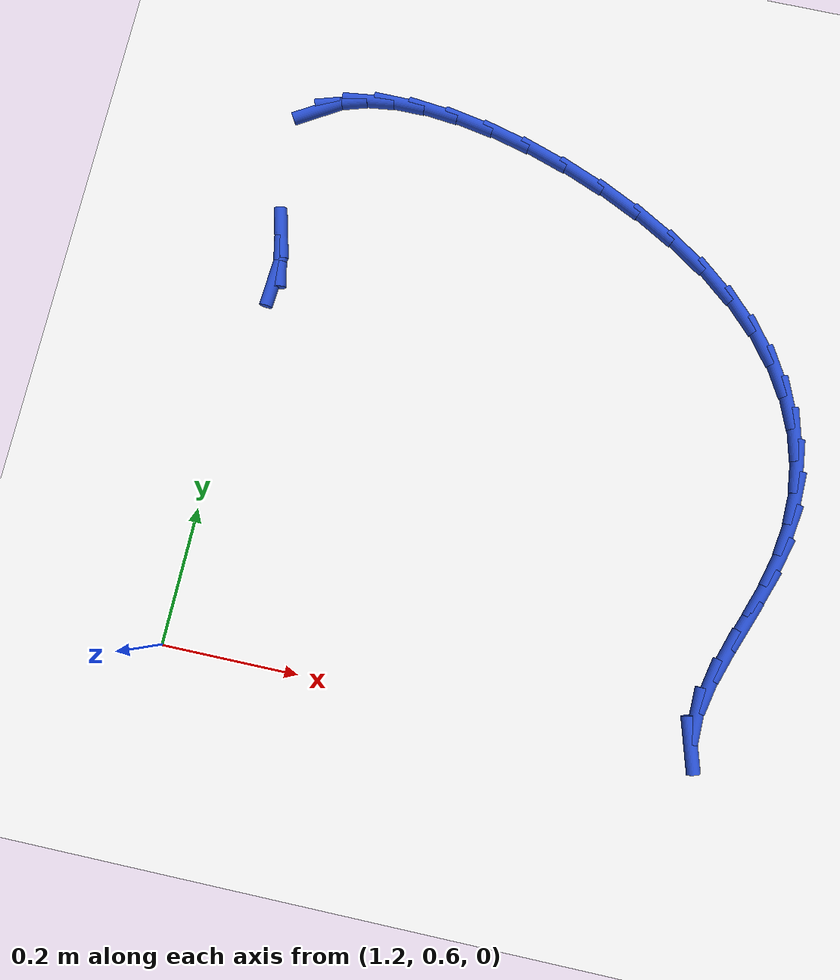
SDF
<sdf version="1.6">
 <world name="default">
  <model name="ground_plane">
   <static>1</static>
   <link name="link">
    <collision name="collision">
     <geometry><plane><normal>0 0 1</normal><size>100 100</size></plane></geometry>
     <surface><friction><ode><mu>100</mu><mu2>50</mu2></ode></friction></surface>
    </collision>
    <visual name="visual">
     <cast_shadows>0</cast_shadows>
     <geometry><plane><normal>0 0 1</normal><size>100 100</size></plane></geometry>
     <material>
      <script><uri>file://media/materials/scripts/gazebo.material</uri><name>Gazebo/WhiteGlow</name></script>
     </material>
    </visual>
   </link>
  </model>
  <model name="line">
   <link name="link_44">
    <pose>1.2268882900225841 1.1556203905439701 0.01 0 1.57 1.509342696568505</pose>
    <collision name="collision">
     <geometry><cylinder><radius>0.01</radius><length>0.08</length></cylinder></geometry>
    </collision>
    <visual name="visual">
     <material>
      <script><name>Gazebo/Blue</name><uri>file://media/materials/scripts/gazebo.material</uri></script>
     </material>
     <geometry><cylinder><radius>0.01</radius><length>0.08</length></cylinder></geometry>
    </visual>
   </link>
   <link name="link_45">
    <pose>1.2288407437148205 1.1873515546843953 0.01 0 1.57 -1.3631857798975189</pose>
    <collision name="collision">
     <geometry><cylinder><radius>0.01</radius><length>0.08</length></cylinder></geometry>
    </collision>
    <visual name="visual">
     <material>
      <script><name>Gazebo/Blue</name><uri>file://media/materials/scripts/gazebo.material</uri></script>
     </material>
     <geometry><cylinder><radius>0.01</radius><length>0.08</length></cylinder></geometry>
    </visual>
   </link>
   <link name="link_46">
    <pose>1.2197252214525915 1.2306257444936068 0.01 0 1.57 -1.302869429223979</pose>
    <collision name="collision">
     <geometry><cylinder><radius>0.01</radius><length>0.08</length></cylinder></geometry>
    </collision>
    <visual name="visual">
     <material>
      <script><name>Gazebo/Blue</name><uri>file://media/materials/scripts/gazebo.material</uri></script>
     </material>
     <geometry><cylinder><radius>0.01</radius><length>0.08</length></cylinder></geometry>
    </visual>
   </link>
   <link name="link_51">
    <pose>1.227743006416404 1.4355734864724743 0.01 0 1.57 0.5484690647117576</pose>
    <collision name="collision">
     <geometry><cylinder><radius>0.01</radius><length>0.08</length></cylinder></geometry>
    </collision>
    <visual name="visual">
     <material>
      <script><name>Gazebo/Blue</name><uri>file://media/materials/scripts/gazebo.material</uri></script>
     </material>
     <geometry><cylinder><radius>0.01</radius><length>0.08</length></cylinder></geometry>
    </visual>
   </link>
   <link name="link_52">
    <pose>1.2599540089391188 1.4552544340132947 0.01 0 1.57 0.2984901426879694</pose>
    <collision name="collision">
     <geometry><cylinder><radius>0.01</radius><length>0.08</length></cylinder></geometry>
    </collision>
    <visual name="visual">
     <material>
      <script><name>Gazebo/Blue</name><uri>file://media/materials/scripts/gazebo.material</uri></script>
     </material>
     <geometry><cylinder><radius>0.01</radius><length>0.08</length></cylinder></geometry>
    </visual>
   </link>
   <link name="link_53">
    <pose>1.3006427144156738 1.4677736442340934 0.01 0 1.57 0.12061527283436092</pose>
    <collision name="collision">
     <geometry><cylinder><radius>0.01</radius><length>0.08</length></cylinder></geometry>
    </collision>
    <visual name="visual">
     <material>
      <script><name>Gazebo/Blue</name><uri>file://media/materials/scripts/gazebo.material</uri></script>
     </material>
     <geometry><cylinder><radius>0.01</radius><length>0.08</length></cylinder></geometry>
    </visual>
   </link>
   <link name="link_54">
    <pose>1.3484546050103041 1.4735686175984053 0.01 0 1.57 -0.00917775478246893</pose>
    <collision name="collision">
     <geometry><cylinder><radius>0.01</radius><length>0.08</length></cylinder></geometry>
    </collision>
    <visual name="visual">
     <material>
      <script><name>Gazebo/Blue</name><uri>file://media/materials/scripts/gazebo.material</uri></script>
     </material>
     <geometry><cylinder><radius>0.01</radius><length>0.08</length></cylinder></geometry>
    </visual>
   </link>
   <link name="link_55">
    <pose>1.4020351628872454 1.4730768545697648 0.01 0 1.57 -0.10890494523205782</pose>
    <collision name="collision">
     <geometry><cylinder><radius>0.01</radius><length>0.08</length></cylinder></geometry>
    </collision>
    <visual name="visual">
     <material>
      <script><name>Gazebo/Blue</name><uri>file://media/materials/scripts/gazebo.material</uri></script>
     </material>
     <geometry><cylinder><radius>0.01</radius><length>0.08</length></cylinder></geometry>
    </visual>
   </link>
   <link name="link_56">
    <pose>1.4600298702107315 1.4667358556117058 0.01 0 1.57 -0.19017016413349755</pose>
    <collision name="collision">
     <geometry><cylinder><radius>0.01</radius><length>0.08</length></cylinder></geometry>
    </collision>
    <visual name="visual">
     <material>
      <script><name>Gazebo/Blue</name><uri>file://media/materials/scripts/gazebo.material</uri></script>
     </material>
     <geometry><cylinder><radius>0.01</radius><length>0.08</length></cylinder></geometry>
    </visual>
   </link>
   <link name="link_57">
    <pose>1.5210842091449983 1.4549831211877642 0.01 0 1.57 -0.2604702192928912</pose>
    <collision name="collision">
     <geometry><cylinder><radius>0.01</radius><length>0.08</length></cylinder></geometry>
    </collision>
    <visual name="visual">
     <material>
      <script><name>Gazebo/Blue</name><uri>file://media/materials/scripts/gazebo.material</uri></script>
     </material>
     <geometry><cylinder><radius>0.01</radius><length>0.08</length></cylinder></geometry>
    </visual>
   </link>
   <link name="link_58">
    <pose>1.583843661854281 1.438256151761473 0.01 0 1.57 -0.32498455611469085</pose>
    <collision name="collision">
     <geometry><cylinder><radius>0.01</radius><length>0.08</length></cylinder></geometry>
    </collision>
    <visual name="visual">
     <material>
      <script><name>Gazebo/Blue</name><uri>file://media/materials/scripts/gazebo.material</uri></script>
     </material>
     <geometry><cylinder><radius>0.01</radius><length>0.08</length></cylinder></geometry>
    </visual>
   </link>
   <link name="link_59">
    <pose>1.6469537105028131 1.4169924477963676 0.01 0 1.57 -0.3877100997034499</pose>
    <collision name="collision">
     <geometry><cylinder><radius>0.01</radius><length>0.08</length></cylinder></geometry>
    </collision>
    <visual name="visual">
     <material>
      <script><name>Gazebo/Blue</name><uri>file://media/materials/scripts/gazebo.material</uri></script>
     </material>
     <geometry><cylinder><radius>0.01</radius><length>0.08</length></cylinder></geometry>
    </visual>
   </link>
   <link name="link_60">
    <pose>1.7090598372548311 1.3916295097559819 0.01 0 1.57 -0.45221299297175904</pose>
    <collision name="collision">
     <geometry><cylinder><radius>0.01</radius><length>0.08</length></cylinder></geometry>
    </collision>
    <visual name="visual">
     <material>
      <script><name>Gazebo/Blue</name><uri>file://media/materials/scripts/gazebo.material</uri></script>
     </material>
     <geometry><cylinder><radius>0.01</radius><length>0.08</length></cylinder></geometry>
    </visual>
   </link>
   <link name="link_61">
    <pose>1.7688075242745689 1.3626048381038514 0.01 0 1.57 -0.5222222685306123</pose>
    <collision name="collision">
     <geometry><cylinder><radius>0.01</radius><length>0.08</length></cylinder></geometry>
    </collision>
    <visual name="visual">
     <material>
      <script><name>Gazebo/Blue</name><uri>file://media/materials/scripts/gazebo.material</uri></script>
     </material>
     <geometry><cylinder><radius>0.01</radius><length>0.08</length></cylinder></geometry>
    </visual>
   </link>
   <link name="link_62">
    <pose>1.8248422537262612 1.3303559333035095 0.01 0 1.57 -0.602229392419917</pose>
    <collision name="collision">
     <geometry><cylinder><radius>0.01</radius><length>0.08</length></cylinder></geometry>
    </collision>
    <visual name="visual">
     <material>
      <script><name>Gazebo/Blue</name><uri>file://media/materials/scripts/gazebo.material</uri></script>
     </material>
     <geometry><cylinder><radius>0.01</radius><length>0.08</length></cylinder></geometry>
    </visual>
   </link>
   <link name="link_63">
    <pose>1.8758095077741448 1.2953202958184913 0.01 0 1.57 -0.6974812354569768</pose>
    <collision name="collision">
     <geometry><cylinder><radius>0.01</radius><length>0.08</length></cylinder></geometry>
    </collision>
    <visual name="visual">
     <material>
      <script><name>Gazebo/Blue</name><uri>file://media/materials/scripts/gazebo.material</uri></script>
     </material>
     <geometry><cylinder><radius>0.01</radius><length>0.08</length></cylinder></geometry>
    </visual>
   </link>
   <link name="link_64">
    <pose>1.9204390569906598 1.2579211001896966 0.01 0 1.57 -0.806347410863595</pose>
    <collision name="collision">
     <geometry><cylinder><radius>0.01</radius><length>0.08</length></cylinder></geometry>
    </collision>
    <visual name="visual">
     <material>
      <script><name>Gazebo/Blue</name><uri>file://media/materials/scripts/gazebo.material</uri></script>
     </material>
     <geometry><cylinder><radius>0.01</radius><length>0.08</length></cylinder></geometry>
    </visual>
   </link>
   <link name="link_65">
    <pose>1.9583009041307067 1.2184387124568747 0.01 0 1.57 -0.9254235962651746</pose>
    <collision name="collision">
     <geometry><cylinder><radius>0.01</radius><length>0.08</length></cylinder></geometry>
    </collision>
    <visual name="visual">
     <material>
      <script><name>Gazebo/Blue</name><uri>file://media/materials/scripts/gazebo.material</uri></script>
     </material>
     <geometry><cylinder><radius>0.01</radius><length>0.08</length></cylinder></geometry>
    </visual>
   </link>
   <link name="link_66">
    <pose>1.9894474519612113 1.177071508438366 0.01 0 1.57 -1.0536353584999212</pose>
    <collision name="collision">
     <geometry><cylinder><radius>0.01</radius><length>0.08</length></cylinder></geometry>
    </collision>
    <visual name="visual">
     <material>
      <script><name>Gazebo/Blue</name><uri>file://media/materials/scripts/gazebo.material</uri></script>
     </material>
     <geometry><cylinder><radius>0.01</radius><length>0.08</length></cylinder></geometry>
    </visual>
   </link>
   <link name="link_67">
    <pose>2.0139368420238357 1.1340168885723312 0.01 0 1.57 -1.1888872692599786</pose>
    <collision name="collision">
     <geometry><cylinder><radius>0.01</radius><length>0.08</length></cylinder></geometry>
    </collision>
    <visual name="visual">
     <material>
      <script><name>Gazebo/Blue</name><uri>file://media/materials/scripts/gazebo.material</uri></script>
     </material>
     <geometry><cylinder><radius>0.01</radius><length>0.08</length></cylinder></geometry>
    </visual>
   </link>
   <link name="link_68">
    <pose>2.031827215860241 1.0894722532969296 0.01 0 1.57 -1.3280737308367965</pose>
    <collision name="collision">
     <geometry><cylinder><radius>0.01</radius><length>0.08</length></cylinder></geometry>
    </collision>
    <visual name="visual">
     <material>
      <script><name>Gazebo/Blue</name><uri>file://media/materials/scripts/gazebo.material</uri></script>
     </material>
     <geometry><cylinder><radius>0.01</radius><length>0.08</length></cylinder></geometry>
    </visual>
   </link>
   <link name="link_69">
    <pose>2.04317671501209 1.0436350030503212 0.01 0 1.57 -1.4674684187488845</pose>
    <collision name="collision">
     <geometry><cylinder><radius>0.01</radius><length>0.08</length></cylinder></geometry>
    </collision>
    <visual name="visual">
     <material>
      <script><name>Gazebo/Blue</name><uri>file://media/materials/scripts/gazebo.material</uri></script>
     </material>
     <geometry><cylinder><radius>0.01</radius><length>0.08</length></cylinder></geometry>
    </visual>
   </link>
   <link name="link_70">
    <pose>2.0480434810210433 0.9967025382706665 0.01 0 1.57 1.5382379739220828</pose>
    <collision name="collision">
     <geometry><cylinder><radius>0.01</radius><length>0.08</length></cylinder></geometry>
    </collision>
    <visual name="visual">
     <material>
      <script><name>Gazebo/Blue</name><uri>file://media/materials/scripts/gazebo.material</uri></script>
     </material>
     <geometry><cylinder><radius>0.01</radius><length>0.08</length></cylinder></geometry>
    </visual>
   </link>
   <link name="link_71">
    <pose>2.046485655428763 0.9488722593961243 0.01 0 1.57 1.4089408867401596</pose>
    <collision name="collision">
     <geometry><cylinder><radius>0.01</radius><length>0.08</length></cylinder></geometry>
    </collision>
    <visual name="visual">
     <material>
      <script><name>Gazebo/Blue</name><uri>file://media/materials/scripts/gazebo.material</uri></script>
     </material>
     <geometry><cylinder><radius>0.01</radius><length>0.08</length></cylinder></geometry>
    </visual>
   </link>
   <link name="link_72">
    <pose>2.03856137977691 0.9003415668648556 0.01 0 1.57 1.2935672476214564</pose>
    <collision name="collision">
     <geometry><cylinder><radius>0.01</radius><length>0.08</length></cylinder></geometry>
    </collision>
    <visual name="visual">
     <material>
      <script><name>Gazebo/Blue</name><uri>file://media/materials/scripts/gazebo.material</uri></script>
     </material>
     <geometry><cylinder><radius>0.01</radius><length>0.08</length></cylinder></geometry>
    </visual>
   </link>
   <link name="link_73">
    <pose>2.0246238695339693 0.851361831211347 0.01 0 1.57 1.224349799349156</pose>
    <collision name="collision">
     <geometry><cylinder><radius>0.01</radius><length>0.08</length></cylinder></geometry>
    </collision>
    <visual name="visual">
     <material>
      <script><name>Gazebo/Blue</name><uri>file://media/materials/scripts/gazebo.material</uri></script>
     </material>
     <geometry><cylinder><radius>0.01</radius><length>0.08</length></cylinder></geometry>
    </visual>
   </link>
   <link name="link_74">
    <pose>2.00700087104609 0.802545571861877 0.01 0 1.57 1.2081696734709182</pose>
    <collision name="collision">
     <geometry><cylinder><radius>0.01</radius><length>0.08</length></cylinder></geometry>
    </collision>
    <visual name="visual">
     <material>
      <script><name>Gazebo/Blue</name><uri>file://media/materials/scripts/gazebo.material</uri></script>
     </material>
     <geometry><cylinder><radius>0.01</radius><length>0.08</length></cylinder></geometry>
    </visual>
   </link>
   <link name="link_75">
    <pose>1.9888304013260205 0.7546535096998934 0.01 0 1.57 1.2456366924832711</pose>
    <collision name="collision">
     <geometry><cylinder><radius>0.01</radius><length>0.08</length></cylinder></geometry>
    </collision>
    <visual name="visual">
     <material>
      <script><name>Gazebo/Blue</name><uri>file://media/materials/scripts/gazebo.material</uri></script>
     </material>
     <geometry><cylinder><radius>0.01</radius><length>0.08</length></cylinder></geometry>
    </visual>
   </link>
   <link name="link_76">
    <pose>1.9732529458777097 0.708446817104878 0.01 0 1.57 1.3495270877420338</pose>
    <collision name="collision">
     <geometry><cylinder><radius>0.01</radius><length>0.08</length></cylinder></geometry>
    </collision>
    <visual name="visual">
     <material>
      <script><name>Gazebo/Blue</name><uri>file://media/materials/scripts/gazebo.material</uri></script>
     </material>
     <geometry><cylinder><radius>0.01</radius><length>0.08</length></cylinder></geometry>
    </visual>
   </link>
   <link name="link_77">
    <pose>1.9634089902051066 0.6646866664563114 0.01 0 1.57 1.546881968835788</pose>
    <collision name="collision">
     <geometry><cylinder><radius>0.01</radius><length>0.08</length></cylinder></geometry>
    </collision>
    <visual name="visual">
     <material>
      <script><name>Gazebo/Blue</name><uri>file://media/materials/scripts/gazebo.material</uri></script>
     </material>
     <geometry><cylinder><radius>0.01</radius><length>0.08</length></cylinder></geometry>
    </visual>
   </link>
   <link name="link_78">
    <pose>1.96243901981216 0.6241342301336769 0.01 0 1.57 -1.2881896681887413</pose>
    <collision name="collision">
     <geometry><cylinder><radius>0.01</radius><length>0.08</length></cylinder></geometry>
    </collision>
    <visual name="visual">
     <material>
      <script><name>Gazebo/Blue</name><uri>file://media/materials/scripts/gazebo.material</uri></script>
     </material>
     <geometry><cylinder><radius>0.01</radius><length>0.08</length></cylinder></geometry>
    </visual>
   </link>
  </model>
 </world>
</sdf>
